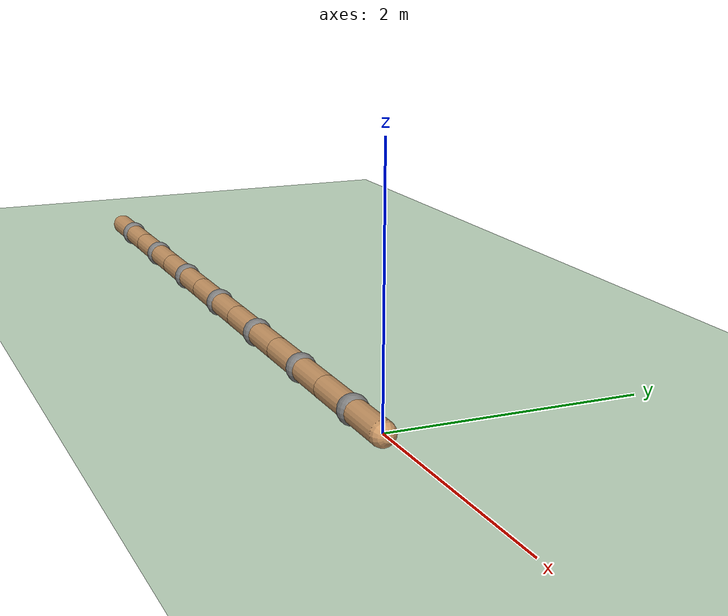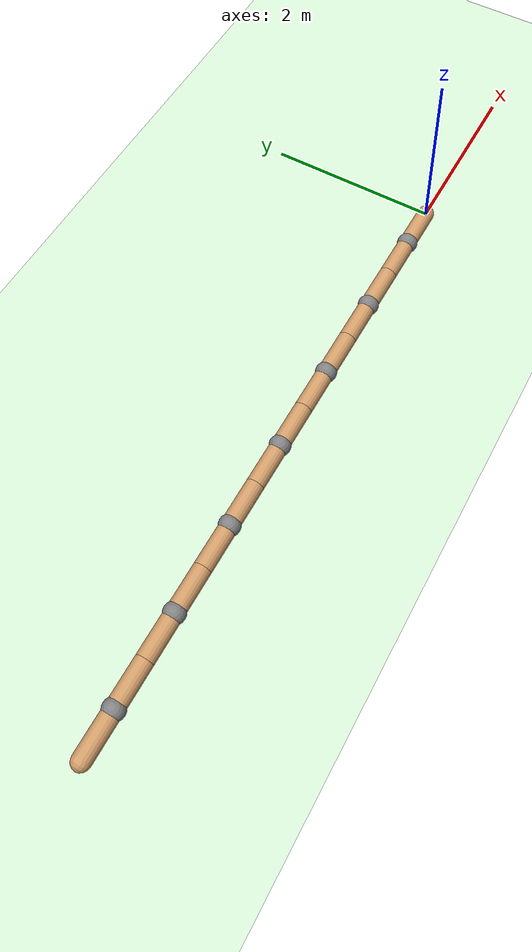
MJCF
<mujoco model="swimmer">
    <compiler angle="degree" coordinate="local" inertiafromgeom="true"/>
    <option collision="predefined" density="1000" integrator="RK4" timestep="0.005" viscosity="0.1"/>
    <default>
        <geom conaffinity="1" condim="1" contype="1" material="geom" rgba="0.8 0.6 .4 1"/>
        <joint armature='0.1'/>
        <default class="mid">
            <site pos="-0.5 0 0" size="0.12"/>
        </default>
    </default>
    <asset>
        <texture builtin="gradient" height="100" rgb1="1 1 1" rgb2="0 0 0" type="skybox" width="100"/>
        <texture builtin="flat" height="1278" mark="cross" markrgb="1 1 1" name="texgeom" random="0.01"
                 rgb1="0.8 0.6 0.4" rgb2="0.8 0.6 0.4" type="cube" width="127"/>
        <texture builtin="checker" height="100" name="texplane" rgb1="0 0 0" rgb2="0.8 0.8 0.8" type="2d" width="100"/>
        <material name="MatPlane" reflectance="0.5" shininess="1" specular="1" texrepeat="30 30" texture="texplane"/>
        <material name="geom" texture="texgeom" texuniform="true"/>
    </asset>
    <worldbody>
        <light cutoff="100" diffuse="1 1 1" dir="-0 0 -1.3" directional="true" exponent="1" pos="0 0 1.3"
               specular=".1 .1 .1"/>
        <geom conaffinity="1" condim="3" material="MatPlane" name="floor" pos="0 0 -0.1" rgba="0.8 0.9 0.8 1"
              size="40 40 0.1" type="plane"/>
        <!--  ================= SWIMMER ================= /-->
        <body name="torso" pos="0 0 0">
            <camera name="track" mode="trackcom" pos="0 -3 3" xyaxes="1 0 0 0 1 1"/>
            <geom density="1000" fromto="0 0 0 -1 0 0" size="0.1" type="capsule"/>
            <joint axis="1 0 0" name="slider1" pos="0 0 0" type="slide"/>
            <joint axis="0 1 0" name="slider2" pos="0 0 0" type="slide"/>
            <joint axis="0 0 1" name="rot" pos="0 0 0" type="hinge"/>
            <site name="head" class="mid"/>
            <body name="body1" pos="-1 0 0">
                <geom density="1000" fromto="0 0 0 -1 0 0" size=".1" type="capsule"/>
                <joint axis="0 0 1" limited="true" name="rot1" pos="0 0 0" range="-100 100" type="hinge"/>
                <site name="site1" class="mid"/>
                <body name="body2" pos="-1 0 0">
                    <geom density="1000" fromto="0 0 0 -1 0 0" size="0.1" type="capsule"/>
                    <joint axis="0 0 1" limited="true" name="rot2" pos="0 0 0" range="-100 100" type="hinge"/>
                    <site name="site2" class="mid"/>
                    <body name="body3" pos="-1 0 0">
                        <geom density="1000" fromto="0 0 0 -1 0 0" size=".1" type="capsule"/>
                        <joint axis="0 0 1" limited="true" name="rot3" pos="0 0 0" range="-100 100" type="hinge"/>
                        <site name="site3" class="mid"/>
                        <body name="body4" pos="-1 0 0">
                            <geom density="1000" fromto="0 0 0 -1 0 0" size="0.1" type="capsule"/>
                            <joint axis="0 0 1" limited="true" name="rot4" pos="0 0 0" range="-100 100" type="hinge"/>
                            <site name="site4" class="mid"/>
                            <body name="body5" pos="-1 0 0">
                                <geom density="1000" fromto="0 0 0 -1 0 0" size="0.1" type="capsule"/>
                                <joint axis="0 0 1" limited="true" name="rot5" pos="0 0 0" range="-100 100"
                                       type="hinge"/>
                                <site name="site5" class="mid"/>
                                <body name="body6" pos="-1 0 0">
                                    <geom density="1000" fromto="0 0 0 -1 0 0" size="0.1" type="capsule"/>
                                    <joint axis="0 0 1" limited="true" name="rot6" pos="0 0 0" range="-100 100"
                                           type="hinge"/>
                                    <site name="site6" class="mid"/>
                                </body>
                            </body>
                        </body>
                    </body>
                </body>
            </body>
        </body>
    </worldbody>

    <sensor>
        <gyro name="gyro1" site="site1"/>
        <gyro name="gyro2" site="site2"/>
        <gyro name="gyro3" site="site3"/>
        <gyro name="gyro4" site="site4"/>
        <gyro name="gyro5" site="site5"/>
        <gyro name="gyro6" site="site6"/>

        <framepos objtype="site" objname="head"/>
        <framepos objtype="site" objname="site1"/>
        <framepos objtype="site" objname="site2"/>
        <framepos objtype="site" objname="site3"/>
        <framepos objtype="site" objname="site4"/>
        <framepos objtype="site" objname="site5"/>
        <framepos objtype="site" objname="site6"/>

    </sensor>

    <actuator>
        <position ctrllimited="true" ctrlrange="-1 1" forcelimited="true" forcerange="-100 100" kp="100" gear="1" joint="rot1"/>
        <position ctrllimited="true" ctrlrange="-1 1" forcelimited="true" forcerange="-100 100" kp="100" gear="1" joint="rot2"/>
        <position ctrllimited="true" ctrlrange="-1 1" forcelimited="true" forcerange="-100 100" kp="100" gear="1" joint="rot3"/>
        <position ctrllimited="true" ctrlrange="-1 1" forcelimited="true" forcerange="-100 100" kp="100" gear="1" joint="rot4"/>
        <position ctrllimited="true" ctrlrange="-1 1" forcelimited="true" forcerange="-100 100" kp="100" gear="1" joint="rot5"/>
        <position ctrllimited="true" ctrlrange="-1 1" forcelimited="true" forcerange="-100 100" kp="100" gear="1" joint="rot6"/>
    </actuator>
</mujoco>
